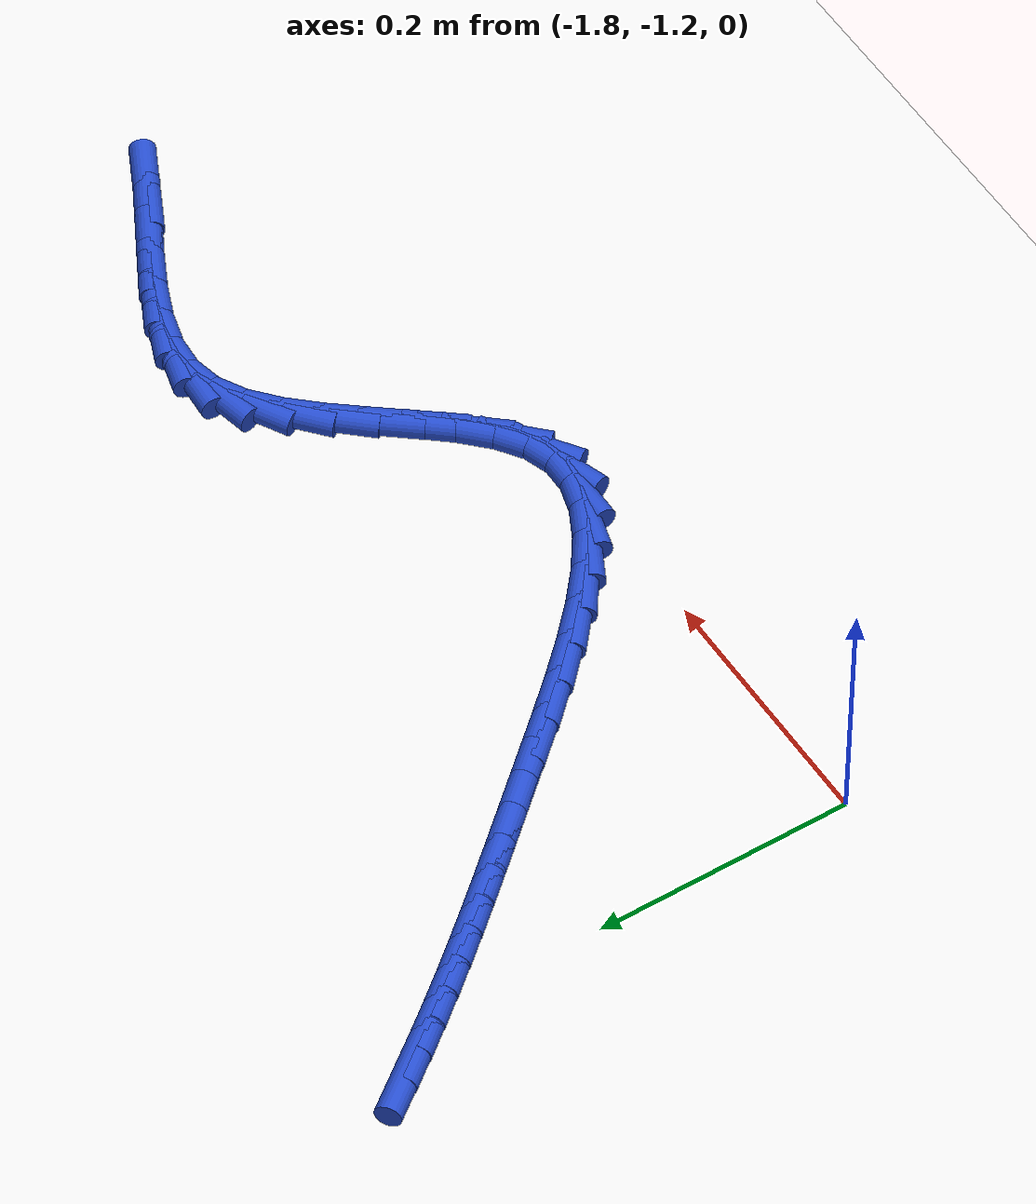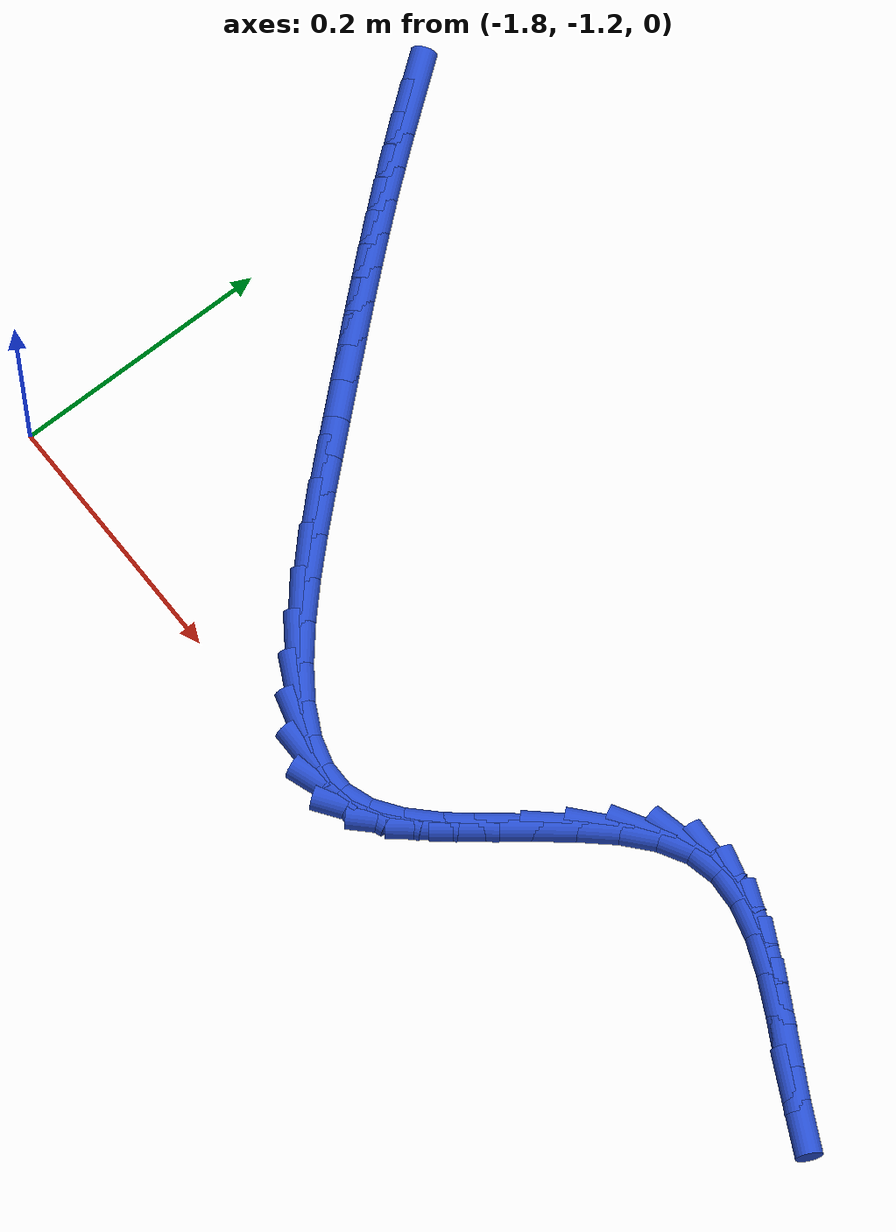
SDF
<sdf version="1.6">
 <world name="default">
  <model name="ground_plane">
   <static>1</static>
   <link name="link">
    <collision name="collision">
     <geometry><plane><normal>0 0 1</normal><size>100 100</size></plane></geometry>
     <surface><friction><ode><mu>100</mu><mu2>50</mu2></ode></friction></surface>
    </collision>
    <visual name="visual">
     <cast_shadows>0</cast_shadows>
     <geometry><plane><normal>0 0 1</normal><size>100 100</size></plane></geometry>
     <material>
      <script><uri>file://media/materials/scripts/gazebo.material</uri><name>Gazebo/WhiteGlow</name></script>
     </material>
    </visual>
   </link>
  </model>
  <model name="line">
   <link name="link_179">
    <pose>-1.8359064805978917 -0.825605758884634 0.01 0 1.57 -0.9195582203120722</pose>
    <collision name="collision">
     <geometry><cylinder><radius>0.01</radius><length>0.08</length></cylinder></geometry>
    </collision>
    <visual name="visual">
     <material>
      <script><name>Gazebo/Blue</name><uri>file://media/materials/scripts/gazebo.material</uri></script>
     </material>
     <geometry><cylinder><radius>0.01</radius><length>0.08</length></cylinder></geometry>
    </visual>
   </link>
   <link name="link_180">
    <pose>-1.8194461385972436 -0.8472027266839341 0.01 0 1.57 -0.9047639351669905</pose>
    <collision name="collision">
     <geometry><cylinder><radius>0.01</radius><length>0.08</length></cylinder></geometry>
    </collision>
    <visual name="visual">
     <material>
      <script><name>Gazebo/Blue</name><uri>file://media/materials/scripts/gazebo.material</uri></script>
     </material>
     <geometry><cylinder><radius>0.01</radius><length>0.08</length></cylinder></geometry>
    </visual>
   </link>
   <link name="link_181">
    <pose>-1.8028231929091174 -0.8683564529075666 0.01 0 1.57 -0.8910307548717935</pose>
    <collision name="collision">
     <geometry><cylinder><radius>0.01</radius><length>0.08</length></cylinder></geometry>
    </collision>
    <visual name="visual">
     <material>
      <script><name>Gazebo/Blue</name><uri>file://media/materials/scripts/gazebo.material</uri></script>
     </material>
     <geometry><cylinder><radius>0.01</radius><length>0.08</length></cylinder></geometry>
    </visual>
   </link>
   <link name="link_182">
    <pose>-1.7860493843955625 -0.8891090866917841 0.01 0 1.57 -0.8784750225972565</pose>
    <collision name="collision">
     <geometry><cylinder><radius>0.01</radius><length>0.08</length></cylinder></geometry>
    </collision>
    <visual name="visual">
     <material>
      <script><name>Gazebo/Blue</name><uri>file://media/materials/scripts/gazebo.material</uri></script>
     </material>
     <geometry><cylinder><radius>0.01</radius><length>0.08</length></cylinder></geometry>
    </visual>
   </link>
   <link name="link_183">
    <pose>-1.7691206663254748 -0.9095236745932119 0.01 0 1.57 -0.8675655630793261</pose>
    <collision name="collision">
     <geometry><cylinder><radius>0.01</radius><length>0.08</length></cylinder></geometry>
    </collision>
    <visual name="visual">
     <material>
      <script><name>Gazebo/Blue</name><uri>file://media/materials/scripts/gazebo.material</uri></script>
     </material>
     <geometry><cylinder><radius>0.01</radius><length>0.08</length></cylinder></geometry>
    </visual>
   </link>
   <link name="link_184">
    <pose>-1.7519282626913557 -0.9298018892208202 0.01 0 1.57 -0.8587374846810113</pose>
    <collision name="collision">
     <geometry><cylinder><radius>0.01</radius><length>0.08</length></cylinder></geometry>
    </collision>
    <visual name="visual">
     <material>
      <script><name>Gazebo/Blue</name><uri>file://media/materials/scripts/gazebo.material</uri></script>
     </material>
     <geometry><cylinder><radius>0.01</radius><length>0.08</length></cylinder></geometry>
    </visual>
   </link>
   <link name="link_185">
    <pose>-1.734320757459562 -0.9502018441206257 0.01 0 1.57 -0.8521933968862863</pose>
    <collision name="collision">
     <geometry><cylinder><radius>0.01</radius><length>0.08</length></cylinder></geometry>
    </collision>
    <visual name="visual">
     <material>
      <script><name>Gazebo/Blue</name><uri>file://media/materials/scripts/gazebo.material</uri></script>
     </material>
     <geometry><cylinder><radius>0.01</radius><length>0.08</length></cylinder></geometry>
    </visual>
   </link>
   <link name="link_186">
    <pose>-1.7161466101603766 -0.9709818175498162 0.01 0 1.57 -0.8479782810965316</pose>
    <collision name="collision">
     <geometry><cylinder><radius>0.01</radius><length>0.08</length></cylinder></geometry>
    </collision>
    <visual name="visual">
     <material>
      <script><name>Gazebo/Blue</name><uri>file://media/materials/scripts/gazebo.material</uri></script>
     </material>
     <geometry><cylinder><radius>0.01</radius><length>0.08</length></cylinder></geometry>
    </visual>
   </link>
   <link name="link_187">
    <pose>-1.6972542803240827 -0.9924000877655789 0.01 0 1.57 -0.845993580708057</pose>
    <collision name="collision">
     <geometry><cylinder><radius>0.01</radius><length>0.08</length></cylinder></geometry>
    </collision>
    <visual name="visual">
     <material>
      <script><name>Gazebo/Blue</name><uri>file://media/materials/scripts/gazebo.material</uri></script>
     </material>
     <geometry><cylinder><radius>0.01</radius><length>0.08</length></cylinder></geometry>
    </visual>
   </link>
   <link name="link_188">
    <pose>-1.6774922274809632 -1.0147149330251015 0.01 0 1.57 -0.8460288268246127</pose>
    <collision name="collision">
     <geometry><cylinder><radius>0.01</radius><length>0.08</length></cylinder></geometry>
    </collision>
    <visual name="visual">
     <material>
      <script><name>Gazebo/Blue</name><uri>file://media/materials/scripts/gazebo.material</uri></script>
     </material>
     <geometry><cylinder><radius>0.01</radius><length>0.08</length></cylinder></geometry>
    </visual>
   </link>
   <link name="link_189">
    <pose>-1.6567089111613011 -1.0381846315855714 0.01 0 1.57 -0.8456471448999479</pose>
    <collision name="collision">
     <geometry><cylinder><radius>0.01</radius><length>0.08</length></cylinder></geometry>
    </collision>
    <visual name="visual">
     <material>
      <script><name>Gazebo/Blue</name><uri>file://media/materials/scripts/gazebo.material</uri></script>
     </material>
     <geometry><cylinder><radius>0.01</radius><length>0.08</length></cylinder></geometry>
    </visual>
   </link>
   <link name="link_190">
    <pose>-1.6348047849231715 -1.0629009986404143 0.01 0 1.57 -0.8342640323036049</pose>
    <collision name="collision">
     <geometry><cylinder><radius>0.01</radius><length>0.08</length></cylinder></geometry>
    </collision>
    <visual name="visual">
     <material>
      <script><name>Gazebo/Blue</name><uri>file://media/materials/scripts/gazebo.material</uri></script>
     </material>
     <geometry><cylinder><radius>0.01</radius><length>0.08</length></cylinder></geometry>
    </visual>
   </link>
   <link name="link_191">
    <pose>-1.61194344637018 -1.0881133725469807 0.01 0 1.57 -0.8085981821704014</pose>
    <collision name="collision">
     <geometry><cylinder><radius>0.01</radius><length>0.08</length></cylinder></geometry>
    </collision>
    <visual name="visual">
     <material>
      <script><name>Gazebo/Blue</name><uri>file://media/materials/scripts/gazebo.material</uri></script>
     </material>
     <geometry><cylinder><radius>0.01</radius><length>0.08</length></cylinder></geometry>
    </visual>
   </link>
   <link name="link_192">
    <pose>-1.5883715450969937 -1.1128051940303245 0.01 0 1.57 -0.7667275835319249</pose>
    <collision name="collision">
     <geometry><cylinder><radius>0.01</radius><length>0.08</length></cylinder></geometry>
    </collision>
    <visual name="visual">
     <material>
      <script><name>Gazebo/Blue</name><uri>file://media/materials/scripts/gazebo.material</uri></script>
     </material>
     <geometry><cylinder><radius>0.01</radius><length>0.08</length></cylinder></geometry>
    </visual>
   </link>
   <link name="link_193">
    <pose>-1.5643357623773835 -1.1359598023922959 0.01 0 1.57 -0.7041516389500913</pose>
    <collision name="collision">
     <geometry><cylinder><radius>0.01</radius><length>0.08</length></cylinder></geometry>
    </collision>
    <visual name="visual">
     <material>
      <script><name>Gazebo/Blue</name><uri>file://media/materials/scripts/gazebo.material</uri></script>
     </material>
     <geometry><cylinder><radius>0.01</radius><length>0.08</length></cylinder></geometry>
    </visual>
   </link>
   <link name="link_194">
    <pose>-1.5400827794851213 -1.1565605369347458 0.01 0 1.57 -0.6127663406371384</pose>
    <collision name="collision">
     <geometry><cylinder><radius>0.01</radius><length>0.08</length></cylinder></geometry>
    </collision>
    <visual name="visual">
     <material>
      <script><name>Gazebo/Blue</name><uri>file://media/materials/scripts/gazebo.material</uri></script>
     </material>
     <geometry><cylinder><radius>0.01</radius><length>0.08</length></cylinder></geometry>
    </visual>
   </link>
   <link name="link_195">
    <pose>-1.5158592776939785 -1.1735907369595238 0.01 0 1.57 -0.4792033020732786</pose>
    <collision name="collision">
     <geometry><cylinder><radius>0.01</radius><length>0.08</length></cylinder></geometry>
    </collision>
    <visual name="visual">
     <material>
      <script><name>Gazebo/Blue</name><uri>file://media/materials/scripts/gazebo.material</uri></script>
     </material>
     <geometry><cylinder><radius>0.01</radius><length>0.08</length></cylinder></geometry>
    </visual>
   </link>
   <link name="link_196">
    <pose>-1.4919119382777266 -1.1860337417684803 0.01 0 1.57 -0.28406966008446793</pose>
    <collision name="collision">
     <geometry><cylinder><radius>0.01</radius><length>0.08</length></cylinder></geometry>
    </collision>
    <visual name="visual">
     <material>
      <script><name>Gazebo/Blue</name><uri>file://media/materials/scripts/gazebo.material</uri></script>
     </material>
     <geometry><cylinder><radius>0.01</radius><length>0.08</length></cylinder></geometry>
    </visual>
   </link>
   <link name="link_197">
    <pose>-1.4684874425101373 -1.1928728906634651 0.01 0 1.57 -0.00965022190831056</pose>
    <collision name="collision">
     <geometry><cylinder><radius>0.01</radius><length>0.08</length></cylinder></geometry>
    </collision>
    <visual name="visual">
     <material>
      <script><name>Gazebo/Blue</name><uri>file://media/materials/scripts/gazebo.material</uri></script>
     </material>
     <geometry><cylinder><radius>0.01</radius><length>0.08</length></cylinder></geometry>
    </visual>
   </link>
   <link name="link_198">
    <pose>-1.4458324716649829 -1.1930915229463297 0.01 0 1.57 0.327768804117259</pose>
    <collision name="collision">
     <geometry><cylinder><radius>0.01</radius><length>0.08</length></cylinder></geometry>
    </collision>
    <visual name="visual">
     <material>
      <script><name>Gazebo/Blue</name><uri>file://media/materials/scripts/gazebo.material</uri></script>
     </material>
     <geometry><cylinder><radius>0.01</radius><length>0.08</length></cylinder></geometry>
    </visual>
   </link>
   <link name="link_199">
    <pose>-1.4241826604008254 -1.185729855351661 0.01 0 1.57 0.6127131827436477</pose>
    <collision name="collision">
     <geometry><cylinder><radius>0.01</radius><length>0.08</length></cylinder></geometry>
    </collision>
    <visual name="visual">
     <material>
      <script><name>Gazebo/Blue</name><uri>file://media/materials/scripts/gazebo.material</uri></script>
     </material>
     <geometry><cylinder><radius>0.01</radius><length>0.08</length></cylinder></geometry>
    </visual>
   </link>
   <link name="link_200">
    <pose>-1.4035079270616784 -1.171196239696548 0.01 0 1.57 0.7827119538739686</pose>
    <collision name="collision">
     <geometry><cylinder><radius>0.01</radius><length>0.08</length></cylinder></geometry>
    </collision>
    <visual name="visual">
     <material>
      <script><name>Gazebo/Blue</name><uri>file://media/materials/scripts/gazebo.material</uri></script>
     </material>
     <geometry><cylinder><radius>0.01</radius><length>0.08</length></cylinder></geometry>
    </visual>
   </link>
   <link name="link_201">
    <pose>-1.383505839044428 -1.1513013236493483 0.01 0 1.57 0.8720490344769121</pose>
    <collision name="collision">
     <geometry><cylinder><radius>0.01</radius><length>0.08</length></cylinder></geometry>
    </collision>
    <visual name="visual">
     <material>
      <script><name>Gazebo/Blue</name><uri>file://media/materials/scripts/gazebo.material</uri></script>
     </material>
     <geometry><cylinder><radius>0.01</radius><length>0.08</length></cylinder></geometry>
    </visual>
   </link>
   <link name="link_202">
    <pose>-1.3638615899512325 -1.1279194657676075 0.01 0 1.57 0.9057497911848369</pose>
    <collision name="collision">
     <geometry><cylinder><radius>0.01</radius><length>0.08</length></cylinder></geometry>
    </collision>
    <visual name="visual">
     <material>
      <script><name>Gazebo/Blue</name><uri>file://media/materials/scripts/gazebo.material</uri></script>
     </material>
     <geometry><cylinder><radius>0.01</radius><length>0.08</length></cylinder></geometry>
    </visual>
   </link>
   <link name="link_203">
    <pose>-1.3442603733842509 -1.1029250246088727 0.01 0 1.57 0.8939176700361944</pose>
    <collision name="collision">
     <geometry><cylinder><radius>0.01</radius><length>0.08</length></cylinder></geometry>
    </collision>
    <visual name="visual">
     <material>
      <script><name>Gazebo/Blue</name><uri>file://media/materials/scripts/gazebo.material</uri></script>
     </material>
     <geometry><cylinder><radius>0.01</radius><length>0.08</length></cylinder></geometry>
    </visual>
   </link>
   <link name="link_204">
    <pose>-1.3243873829456407 -1.0781923587306887 0.01 0 1.57 0.8349894895750029</pose>
    <collision name="collision">
     <geometry><cylinder><radius>0.01</radius><length>0.08</length></cylinder></geometry>
    </collision>
    <visual name="visual">
     <material>
      <script><name>Gazebo/Blue</name><uri>file://media/materials/scripts/gazebo.material</uri></script>
     </material>
     <geometry><cylinder><radius>0.01</radius><length>0.08</length></cylinder></geometry>
    </visual>
   </link>
   <link name="link_205">
    <pose>-1.303927812237562 -1.0555958266906034 0.01 0 1.57 0.7160445832263359</pose>
    <collision name="collision">
     <geometry><cylinder><radius>0.01</radius><length>0.08</length></cylinder></geometry>
    </collision>
    <visual name="visual">
     <material>
      <script><name>Gazebo/Blue</name><uri>file://media/materials/scripts/gazebo.material</uri></script>
     </material>
     <geometry><cylinder><radius>0.01</radius><length>0.08</length></cylinder></geometry>
    </visual>
   </link>
   <link name="link_206">
    <pose>-1.282566854862172 -1.037009787046162 0.01 0 1.57 0.5124413273047349</pose>
    <collision name="collision">
     <geometry><cylinder><radius>0.01</radius><length>0.08</length></cylinder></geometry>
    </collision>
    <visual name="visual">
     <material>
      <script><name>Gazebo/Blue</name><uri>file://media/materials/scripts/gazebo.material</uri></script>
     </material>
     <geometry><cylinder><radius>0.01</radius><length>0.08</length></cylinder></geometry>
    </visual>
   </link>
   <link name="link_207">
    <pose>-1.2599897044216295 -1.0243085983549105 0.01 0 1.57 0.21551057478400346</pose>
    <collision name="collision">
     <geometry><cylinder><radius>0.01</radius><length>0.08</length></cylinder></geometry>
    </collision>
    <visual name="visual">
     <material>
      <script><name>Gazebo/Blue</name><uri>file://media/materials/scripts/gazebo.material</uri></script>
     </material>
     <geometry><cylinder><radius>0.01</radius><length>0.08</length></cylinder></geometry>
    </visual>
   </link>
   <link name="link_208">
    <pose>-1.2359417059763809 -1.0190442463077107 0.01 0 1.57 -0.06374996875898134</pose>
    <collision name="collision">
     <geometry><cylinder><radius>0.01</radius><length>0.08</length></cylinder></geometry>
    </collision>
    <visual name="visual">
     <material>
      <script><name>Gazebo/Blue</name><uri>file://media/materials/scripts/gazebo.material</uri></script>
     </material>
     <geometry><cylinder><radius>0.01</radius><length>0.08</length></cylinder></geometry>
    </visual>
   </link>
   <link name="link_209">
    <pose>-1.210560835054579 -1.0206644715276623 0.01 0 1.57 -0.26284192037612225</pose>
    <collision name="collision">
     <geometry><cylinder><radius>0.01</radius><length>0.08</length></cylinder></geometry>
    </collision>
    <visual name="visual">
     <material>
      <script><name>Gazebo/Blue</name><uri>file://media/materials/scripts/gazebo.material</uri></script>
     </material>
     <geometry><cylinder><radius>0.01</radius><length>0.08</length></cylinder></geometry>
    </visual>
   </link>
   <link name="link_210">
    <pose>-1.1841425993968668 -1.027772743985385 0.01 0 1.57 -0.3910516981389162</pose>
    <collision name="collision">
     <geometry><cylinder><radius>0.01</radius><length>0.08</length></cylinder></geometry>
    </collision>
    <visual name="visual">
     <material>
      <script><name>Gazebo/Blue</name><uri>file://media/materials/scripts/gazebo.material</uri></script>
     </material>
     <geometry><cylinder><radius>0.01</radius><length>0.08</length></cylinder></geometry>
    </visual>
   </link>
   <link name="link_211">
    <pose>-1.1569829302325028 -1.038970264026754 0.01 0 1.57 -0.46611893066217625</pose>
    <collision name="collision">
     <geometry><cylinder><radius>0.01</radius><length>0.08</length></cylinder></geometry>
    </collision>
    <visual name="visual">
     <material>
      <script><name>Gazebo/Blue</name><uri>file://media/materials/scripts/gazebo.material</uri></script>
     </material>
     <geometry><cylinder><radius>0.01</radius><length>0.08</length></cylinder></geometry>
    </visual>
   </link>
   <link name="link_212">
    <pose>-1.129377758790744 -1.0528582319976447 0.01 0 1.57 -0.5004752441393707</pose>
    <collision name="collision">
     <geometry><cylinder><radius>0.01</radius><length>0.08</length></cylinder></geometry>
    </collision>
    <visual name="visual">
     <material>
      <script><name>Gazebo/Blue</name><uri>file://media/materials/scripts/gazebo.material</uri></script>
     </material>
     <geometry><cylinder><radius>0.01</radius><length>0.08</length></cylinder></geometry>
    </visual>
   </link>
   <link name="link_213">
    <pose>-1.1016230163008482 -1.0680378482439326 0.01 0 1.57 -0.49971924040055343</pose>
    <collision name="collision">
     <geometry><cylinder><radius>0.01</radius><length>0.08</length></cylinder></geometry>
    </collision>
    <visual name="visual">
     <material>
      <script><name>Gazebo/Blue</name><uri>file://media/materials/scripts/gazebo.material</uri></script>
     </material>
     <geometry><cylinder><radius>0.01</radius><length>0.08</length></cylinder></geometry>
    </visual>
   </link>
   <link name="link_214">
    <pose>-1.0740146339920724 -1.0831103131114925 0.01 0 1.57 -0.46316065964100117</pose>
    <collision name="collision">
     <geometry><cylinder><radius>0.01</radius><length>0.08</length></cylinder></geometry>
    </collision>
    <visual name="visual">
     <material>
      <script><name>Gazebo/Blue</name><uri>file://media/materials/scripts/gazebo.material</uri></script>
     </material>
     <geometry><cylinder><radius>0.01</radius><length>0.08</length></cylinder></geometry>
    </visual>
   </link>
  </model>
 </world>
</sdf>
